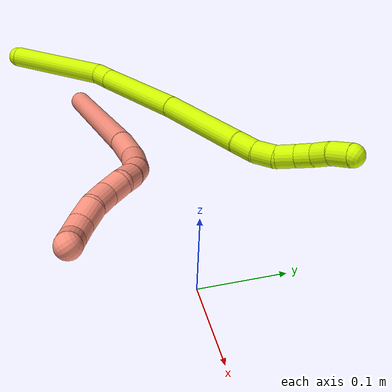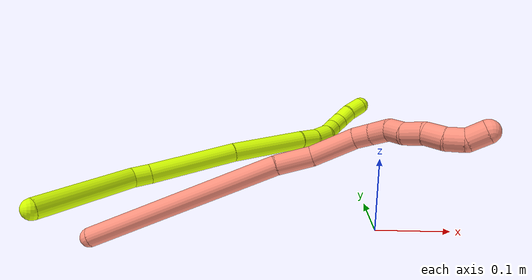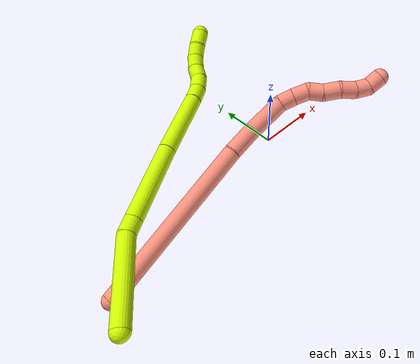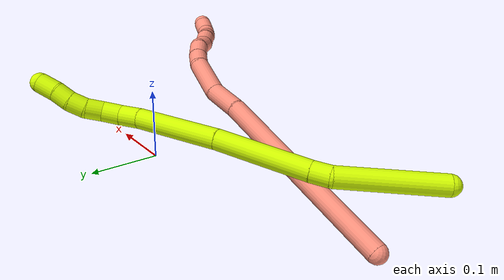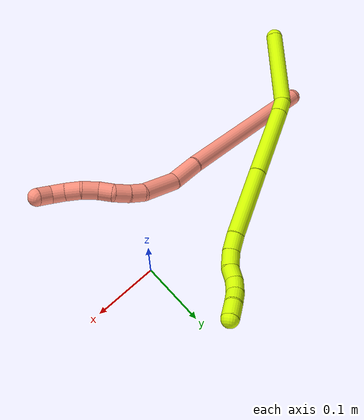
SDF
<sdf version="1.7">
 <world name="default">
  <model name="15">
   <static>0</static>
   <link name="15">
    <collision name="collision-cylinder-e_1_1_4">
     <pose>-0.004307 0.017404 -0.058336 -2.85166 -0.070638 0.474926</pose>
     <geometry><cylinder><radius>0.0125</radius><length>0.122059</length></cylinder></geometry>
     <surface>
      <friction><ode><mu>1.16</mu><mu2>1.16</mu2><slip1>0</slip1><slip2>0</slip2></ode></friction>
      <contact><ode><kp>1e+06</kp><kd>1</kd><max_vel>0</max_vel><min_depth>0.001</min_depth></ode></contact>
     </surface>
    </collision>
    <visual name="visual-cylinder-e_1_1_4">
     <pose>-0.004307 0.017404 -0.058336 -2.85166 -0.070638 0.474926</pose>
     <geometry><cylinder><radius>0.0125</radius><length>0.122059</length></cylinder></geometry>
     <material><ambient>0.835294 1 0 1</ambient></material>
    </visual>
    <collision name="collision-cylinder-e_2_4_5">
     <pose>-0.00581 0.036284 -0.127493 -3.00602 0.251365 -2.15549</pose>
     <geometry><cylinder><radius>0.0125</radius><length>0.02255</length></cylinder></geometry>
     <surface>
      <friction><ode><mu>1.16</mu><mu2>1.16</mu2><slip1>0</slip1><slip2>0</slip2></ode></friction>
      <contact><ode><kp>1e+06</kp><kd>1</kd><max_vel>0</max_vel><min_depth>0.001</min_depth></ode></contact>
     </surface>
    </collision>
    <visual name="visual-cylinder-e_2_4_5">
     <pose>-0.00581 0.036284 -0.127493 -3.00602 0.251365 -2.15549</pose>
     <geometry><cylinder><radius>0.0125</radius><length>0.02255</length></cylinder></geometry>
     <material><ambient>0.835294 1 0 1</ambient></material>
    </visual>
    <collision name="collision-cylinder-e_3_5_6">
     <pose>0.014287 0.046772 -0.191796 -2.97466 0.308662 -2.15476</pose>
     <geometry><cylinder><radius>0.0125</radius><length>0.113853</length></cylinder></geometry>
     <surface>
      <friction><ode><mu>1.16</mu><mu2>1.16</mu2><slip1>0</slip1><slip2>0</slip2></ode></friction>
      <contact><ode><kp>1e+06</kp><kd>1</kd><max_vel>0</max_vel><min_depth>0.001</min_depth></ode></contact>
     </surface>
    </collision>
    <visual name="visual-cylinder-e_3_5_6">
     <pose>0.014287 0.046772 -0.191796 -2.97466 0.308662 -2.15476</pose>
     <geometry><cylinder><radius>0.0125</radius><length>0.113853</length></cylinder></geometry>
     <material><ambient>0.835294 1 0 1</ambient></material>
    </visual>
    <collision name="collision-cylinder-e_4_6_7">
     <pose>0.045848 0.061143 -0.295242 -3.03474 0.276651 -2.40809</pose>
     <geometry><cylinder><radius>0.0125</radius><length>0.104475</length></cylinder></geometry>
     <surface>
      <friction><ode><mu>1.16</mu><mu2>1.16</mu2><slip1>0</slip1><slip2>0</slip2></ode></friction>
      <contact><ode><kp>1e+06</kp><kd>1</kd><max_vel>0</max_vel><min_depth>0.001</min_depth></ode></contact>
     </surface>
    </collision>
    <visual name="visual-cylinder-e_4_6_7">
     <pose>0.045848 0.061143 -0.295242 -3.03474 0.276651 -2.40809</pose>
     <geometry><cylinder><radius>0.0125</radius><length>0.104475</length></cylinder></geometry>
     <material><ambient>0.835294 1 0 1</ambient></material>
    </visual>
    <collision name="collision-cylinder-e_5_7_8">
     <pose>0.062481 0.067738 -0.357793 -3.0437 0.184853 -2.16926</pose>
     <geometry><cylinder><radius>0.0125</radius><length>0.025732</length></cylinder></geometry>
     <surface>
      <friction><ode><mu>1.16</mu><mu2>1.16</mu2><slip1>0</slip1><slip2>0</slip2></ode></friction>
      <contact><ode><kp>1e+06</kp><kd>1</kd><max_vel>0</max_vel><min_depth>0.001</min_depth></ode></contact>
     </surface>
    </collision>
    <visual name="visual-cylinder-e_5_7_8">
     <pose>0.062481 0.067738 -0.357793 -3.0437 0.184853 -2.16926</pose>
     <geometry><cylinder><radius>0.0125</radius><length>0.025732</length></cylinder></geometry>
     <material><ambient>0.835294 1 0 1</ambient></material>
    </visual>
    <collision name="collision-cylinder-e_6_8_9">
     <pose>0.065963 0.072499 -0.381978 -2.84657 0.091933 -0.600431</pose>
     <geometry><cylinder><radius>0.0125</radius><length>0.024348</length></cylinder></geometry>
     <surface>
      <friction><ode><mu>1.16</mu><mu2>1.16</mu2><slip1>0</slip1><slip2>0</slip2></ode></friction>
      <contact><ode><kp>1e+06</kp><kd>1</kd><max_vel>0</max_vel><min_depth>0.001</min_depth></ode></contact>
     </surface>
    </collision>
    <visual name="visual-cylinder-e_6_8_9">
     <pose>0.065963 0.072499 -0.381978 -2.84657 0.091933 -0.600431</pose>
     <geometry><cylinder><radius>0.0125</radius><length>0.024348</length></cylinder></geometry>
     <material><ambient>0.835294 1 0 1</ambient></material>
    </visual>
    <collision name="collision-cylinder-e_7_9_10">
     <pose>0.065721 0.081666 -0.40256 -2.58078 -0.12747 0.436164</pose>
     <geometry><cylinder><radius>0.0125</radius><length>0.02139</length></cylinder></geometry>
     <surface>
      <friction><ode><mu>1.16</mu><mu2>1.16</mu2><slip1>0</slip1><slip2>0</slip2></ode></friction>
      <contact><ode><kp>1e+06</kp><kd>1</kd><max_vel>0</max_vel><min_depth>0.001</min_depth></ode></contact>
     </surface>
    </collision>
    <visual name="visual-cylinder-e_7_9_10">
     <pose>0.065721 0.081666 -0.40256 -2.58078 -0.12747 0.436164</pose>
     <geometry><cylinder><radius>0.0125</radius><length>0.02139</length></cylinder></geometry>
     <material><ambient>0.835294 1 0 1</ambient></material>
    </visual>
    <collision name="collision-cylinder-e_8_10_11">
     <pose>0.06587 0.092932 -0.420074 -2.55879 0.146514 -0.479925</pose>
     <geometry><cylinder><radius>0.0125</radius><length>0.020658</length></cylinder></geometry>
     <surface>
      <friction><ode><mu>1.16</mu><mu2>1.16</mu2><slip1>0</slip1><slip2>0</slip2></ode></friction>
      <contact><ode><kp>1e+06</kp><kd>1</kd><max_vel>0</max_vel><min_depth>0.001</min_depth></ode></contact>
     </surface>
    </collision>
    <visual name="visual-cylinder-e_8_10_11">
     <pose>0.06587 0.092932 -0.420074 -2.55879 0.146514 -0.479925</pose>
     <geometry><cylinder><radius>0.0125</radius><length>0.020658</length></cylinder></geometry>
     <material><ambient>0.835294 1 0 1</ambient></material>
    </visual>
    <collision name="collision-cylinder-e_9_11_12">
     <pose>0.071073 0.104126 -0.436335 -2.51708 0.370033 -1.0508</pose>
     <geometry><cylinder><radius>0.0125</radius><length>0.020438</length></cylinder></geometry>
     <surface>
      <friction><ode><mu>1.16</mu><mu2>1.16</mu2><slip1>0</slip1><slip2>0</slip2></ode></friction>
      <contact><ode><kp>1e+06</kp><kd>1</kd><max_vel>0</max_vel><min_depth>0.001</min_depth></ode></contact>
     </surface>
    </collision>
    <visual name="visual-cylinder-e_9_11_12">
     <pose>0.071073 0.104126 -0.436335 -2.51708 0.370033 -1.0508</pose>
     <geometry><cylinder><radius>0.0125</radius><length>0.020438</length></cylinder></geometry>
     <material><ambient>0.835294 1 0 1</ambient></material>
    </visual>
    <collision name="collision-cylinder-e_10_12_2">
     <pose>0.078775 0.114666 -0.454519 -2.69798 0.333139 -1.28125</pose>
     <geometry><cylinder><radius>0.0125</radius><length>0.024498</length></cylinder></geometry>
     <surface>
      <friction><ode><mu>1.16</mu><mu2>1.16</mu2><slip1>0</slip1><slip2>0</slip2></ode></friction>
      <contact><ode><kp>1e+06</kp><kd>1</kd><max_vel>0</max_vel><min_depth>0.001</min_depth></ode></contact>
     </surface>
    </collision>
    <visual name="visual-cylinder-e_10_12_2">
     <pose>0.078775 0.114666 -0.454519 -2.69798 0.333139 -1.28125</pose>
     <geometry><cylinder><radius>0.0125</radius><length>0.024498</length></cylinder></geometry>
     <material><ambient>0.835294 1 0 1</ambient></material>
    </visual>
    <collision name="collision-sphere-2">
     <pose>0.08278 0.119634 -0.464975 0 -0 0</pose>
     <geometry><sphere><radius>0.0125</radius></sphere></geometry>
     <surface>
      <friction><ode><mu>1.16</mu><mu2>1.16</mu2><slip1>0</slip1><slip2>0</slip2></ode></friction>
      <contact><ode><kp>1e+06</kp><kd>1</kd><max_vel>0</max_vel><min_depth>0.001</min_depth></ode></contact>
     </surface>
    </collision>
    <visual name="visual-sphere-2">
     <pose>0.08278 0.119634 -0.464975 0 -0 0</pose>
     <geometry><sphere><radius>0.0125</radius></sphere></geometry>
     <material><ambient>0.835294 1 0 1</ambient></material>
    </visual>
    <collision name="collision-sphere-12">
     <pose>0.074769 0.109697 -0.444064 0 -0 0</pose>
     <geometry><sphere><radius>0.0125</radius></sphere></geometry>
     <surface>
      <friction><ode><mu>1.16</mu><mu2>1.16</mu2><slip1>0</slip1><slip2>0</slip2></ode></friction>
      <contact><ode><kp>1e+06</kp><kd>1</kd><max_vel>0</max_vel><min_depth>0.001</min_depth></ode></contact>
     </surface>
    </collision>
    <visual name="visual-sphere-12">
     <pose>0.074769 0.109697 -0.444064 0 -0 0</pose>
     <geometry><sphere><radius>0.0125</radius></sphere></geometry>
     <material><ambient>0.835294 1 0 1</ambient></material>
    </visual>
    <collision name="collision-sphere-11">
     <pose>0.067378 0.098556 -0.428606 0 -0 0</pose>
     <geometry><sphere><radius>0.0125</radius></sphere></geometry>
     <surface>
      <friction><ode><mu>1.16</mu><mu2>1.16</mu2><slip1>0</slip1><slip2>0</slip2></ode></friction>
      <contact><ode><kp>1e+06</kp><kd>1</kd><max_vel>0</max_vel><min_depth>0.001</min_depth></ode></contact>
     </surface>
    </collision>
    <visual name="visual-sphere-11">
     <pose>0.067378 0.098556 -0.428606 0 -0 0</pose>
     <geometry><sphere><radius>0.0125</radius></sphere></geometry>
     <material><ambient>0.835294 1 0 1</ambient></material>
    </visual>
    <collision name="collision-sphere-10">
     <pose>0.064362 0.087308 -0.411543 0 -0 0</pose>
     <geometry><sphere><radius>0.0125</radius></sphere></geometry>
     <surface>
      <friction><ode><mu>1.16</mu><mu2>1.16</mu2><slip1>0</slip1><slip2>0</slip2></ode></friction>
      <contact><ode><kp>1e+06</kp><kd>1</kd><max_vel>0</max_vel><min_depth>0.001</min_depth></ode></contact>
     </surface>
    </collision>
    <visual name="visual-sphere-10">
     <pose>0.064362 0.087308 -0.411543 0 -0 0</pose>
     <geometry><sphere><radius>0.0125</radius></sphere></geometry>
     <material><ambient>0.835294 1 0 1</ambient></material>
    </visual>
    <collision name="collision-sphere-9">
     <pose>0.067081 0.076023 -0.393576 0 -0 0</pose>
     <geometry><sphere><radius>0.0125</radius></sphere></geometry>
     <surface>
      <friction><ode><mu>1.16</mu><mu2>1.16</mu2><slip1>0</slip1><slip2>0</slip2></ode></friction>
      <contact><ode><kp>1e+06</kp><kd>1</kd><max_vel>0</max_vel><min_depth>0.001</min_depth></ode></contact>
     </surface>
    </collision>
    <visual name="visual-sphere-9">
     <pose>0.067081 0.076023 -0.393576 0 -0 0</pose>
     <geometry><sphere><radius>0.0125</radius></sphere></geometry>
     <material><ambient>0.835294 1 0 1</ambient></material>
    </visual>
    <collision name="collision-sphere-4">
     <pose>-0.008615 0.034808 -0.116673 0 -0 0</pose>
     <geometry><sphere><radius>0.0125</radius></sphere></geometry>
     <surface>
      <friction><ode><mu>1.16</mu><mu2>1.16</mu2><slip1>0</slip1><slip2>0</slip2></ode></friction>
      <contact><ode><kp>1e+06</kp><kd>1</kd><max_vel>0</max_vel><min_depth>0.001</min_depth></ode></contact>
     </surface>
    </collision>
    <visual name="visual-sphere-4">
     <pose>-0.008615 0.034808 -0.116673 0 -0 0</pose>
     <geometry><sphere><radius>0.0125</radius></sphere></geometry>
     <material><ambient>0.835294 1 0 1</ambient></material>
    </visual>
    <collision name="collision-sphere-1">
     <geometry><sphere><radius>0.0125</radius></sphere></geometry>
     <surface>
      <friction><ode><mu>1.16</mu><mu2>1.16</mu2><slip1>0</slip1><slip2>0</slip2></ode></friction>
      <contact><ode><kp>1e+06</kp><kd>1</kd><max_vel>0</max_vel><min_depth>0.001</min_depth></ode></contact>
     </surface>
    </collision>
    <visual name="visual-sphere-1">
     <geometry><sphere><radius>0.0125</radius></sphere></geometry>
     <material><ambient>0.835294 1 0 1</ambient></material>
    </visual>
    <collision name="collision-sphere-8">
     <pose>0.064846 0.068974 -0.370379 0 -0 0</pose>
     <geometry><sphere><radius>0.0125</radius></sphere></geometry>
     <surface>
      <friction><ode><mu>1.16</mu><mu2>1.16</mu2><slip1>0</slip1><slip2>0</slip2></ode></friction>
      <contact><ode><kp>1e+06</kp><kd>1</kd><max_vel>0</max_vel><min_depth>0.001</min_depth></ode></contact>
     </surface>
    </collision>
    <visual name="visual-sphere-8">
     <pose>0.064846 0.068974 -0.370379 0 -0 0</pose>
     <geometry><sphere><radius>0.0125</radius></sphere></geometry>
     <material><ambient>0.835294 1 0 1</ambient></material>
    </visual>
    <collision name="collision-sphere-5">
     <pose>-0.003006 0.03776 -0.138313 0 -0 0</pose>
     <geometry><sphere><radius>0.0125</radius></sphere></geometry>
     <surface>
      <friction><ode><mu>1.16</mu><mu2>1.16</mu2><slip1>0</slip1><slip2>0</slip2></ode></friction>
      <contact><ode><kp>1e+06</kp><kd>1</kd><max_vel>0</max_vel><min_depth>0.001</min_depth></ode></contact>
     </surface>
    </collision>
    <visual name="visual-sphere-5">
     <pose>-0.003006 0.03776 -0.138313 0 -0 0</pose>
     <geometry><sphere><radius>0.0125</radius></sphere></geometry>
     <material><ambient>0.835294 1 0 1</ambient></material>
    </visual>
    <collision name="collision-sphere-6">
     <pose>0.031581 0.055784 -0.245278 0 -0 0</pose>
     <geometry><sphere><radius>0.0125</radius></sphere></geometry>
     <surface>
      <friction><ode><mu>1.16</mu><mu2>1.16</mu2><slip1>0</slip1><slip2>0</slip2></ode></friction>
      <contact><ode><kp>1e+06</kp><kd>1</kd><max_vel>0</max_vel><min_depth>0.001</min_depth></ode></contact>
     </surface>
    </collision>
    <visual name="visual-sphere-6">
     <pose>0.031581 0.055784 -0.245278 0 -0 0</pose>
     <geometry><sphere><radius>0.0125</radius></sphere></geometry>
     <material><ambient>0.835294 1 0 1</ambient></material>
    </visual>
    <collision name="collision-sphere-7">
     <pose>0.060116 0.066502 -0.345207 0 -0 0</pose>
     <geometry><sphere><radius>0.0125</radius></sphere></geometry>
     <surface>
      <friction><ode><mu>1.16</mu><mu2>1.16</mu2><slip1>0</slip1><slip2>0</slip2></ode></friction>
      <contact><ode><kp>1e+06</kp><kd>1</kd><max_vel>0</max_vel><min_depth>0.001</min_depth></ode></contact>
     </surface>
    </collision>
    <visual name="visual-sphere-7">
     <pose>0.060116 0.066502 -0.345207 0 -0 0</pose>
     <geometry><sphere><radius>0.0125</radius></sphere></geometry>
     <material><ambient>0.835294 1 0 1</ambient></material>
    </visual>
    <inertial>
     <pose>0.030245 0.053535 -0.237051 0 -0 0</pose>
     <mass>0.5</mass>
     <inertia>
      <ixx>-9.1e-05</ixx>
      <ixy>0</ixy>
      <ixz>0</ixz>
      <iyy>-7.6e-05</iyy>
      <iyz>0</iyz>
      <izz>-0.000173</izz>
     </inertia>
    </inertial>
   </link>
   <pose>-0.388523 -0.139216 0.079455 1.37451 -0.533678 -0.793947</pose>
  </model>
  <model name="16">
   <static>0</static>
   <link name="16">
    <collision name="collision-cylinder-e_1_1_4">
     <pose>0.082809 -0.091097 0.02049 1.34955 0.725511 0.589629</pose>
     <geometry><cylinder><radius>0.0125</radius><length>0.249607</length></cylinder></geometry>
     <surface>
      <friction><ode><mu>1.16</mu><mu2>1.16</mu2><slip1>0</slip1><slip2>0</slip2></ode></friction>
      <contact><ode><kp>1e+06</kp><kd>1</kd><max_vel>0</max_vel><min_depth>0.001</min_depth></ode></contact>
     </surface>
    </collision>
    <visual name="visual-cylinder-e_1_1_4">
     <pose>0.082809 -0.091097 0.02049 1.34955 0.725511 0.589629</pose>
     <geometry><cylinder><radius>0.0125</radius><length>0.249607</length></cylinder></geometry>
     <material><ambient>1 0.576471 0.494118 1</ambient></material>
    </visual>
    <collision name="collision-cylinder-e_2_4_5">
     <pose>0.182344 -0.196647 0.043398 1.40502 0.851333 0.732983</pose>
     <geometry><cylinder><radius>0.0125</radius><length>0.044474</length></cylinder></geometry>
     <surface>
      <friction><ode><mu>1.16</mu><mu2>1.16</mu2><slip1>0</slip1><slip2>0</slip2></ode></friction>
      <contact><ode><kp>1e+06</kp><kd>1</kd><max_vel>0</max_vel><min_depth>0.001</min_depth></ode></contact>
     </surface>
    </collision>
    <visual name="visual-cylinder-e_2_4_5">
     <pose>0.182344 -0.196647 0.043398 1.40502 0.851333 0.732983</pose>
     <geometry><cylinder><radius>0.0125</radius><length>0.044474</length></cylinder></geometry>
     <material><ambient>1 0.576471 0.494118 1</ambient></material>
    </visual>
    <collision name="collision-cylinder-e_3_5_6">
     <pose>0.214138 -0.234187 0.046949 1.52179 0.577698 0.551472</pose>
     <geometry><cylinder><radius>0.0125</radius><length>0.055185</length></cylinder></geometry>
     <surface>
      <friction><ode><mu>1.16</mu><mu2>1.16</mu2><slip1>0</slip1><slip2>0</slip2></ode></friction>
      <contact><ode><kp>1e+06</kp><kd>1</kd><max_vel>0</max_vel><min_depth>0.001</min_depth></ode></contact>
     </surface>
    </collision>
    <visual name="visual-cylinder-e_3_5_6">
     <pose>0.214138 -0.234187 0.046949 1.52179 0.577698 0.551472</pose>
     <geometry><cylinder><radius>0.0125</radius><length>0.055185</length></cylinder></geometry>
     <material><ambient>1 0.576471 0.494118 1</ambient></material>
    </visual>
    <collision name="collision-cylinder-e_4_6_7">
     <pose>0.233887 -0.266386 0.045216 1.87542 0.455654 0.612032</pose>
     <geometry><cylinder><radius>0.0125</radius><length>0.021275</length></cylinder></geometry>
     <surface>
      <friction><ode><mu>1.16</mu><mu2>1.16</mu2><slip1>0</slip1><slip2>0</slip2></ode></friction>
      <contact><ode><kp>1e+06</kp><kd>1</kd><max_vel>0</max_vel><min_depth>0.001</min_depth></ode></contact>
     </surface>
    </collision>
    <visual name="visual-cylinder-e_4_6_7">
     <pose>0.233887 -0.266386 0.045216 1.87542 0.455654 0.612032</pose>
     <geometry><cylinder><radius>0.0125</radius><length>0.021275</length></cylinder></geometry>
     <material><ambient>1 0.576471 0.494118 1</ambient></material>
    </visual>
    <collision name="collision-cylinder-e_5_7_8">
     <pose>0.242239 -0.285219 0.038306 1.96513 0.335432 0.497169</pose>
     <geometry><cylinder><radius>0.0125</radius><length>0.022301</length></cylinder></geometry>
     <surface>
      <friction><ode><mu>1.16</mu><mu2>1.16</mu2><slip1>0</slip1><slip2>0</slip2></ode></friction>
      <contact><ode><kp>1e+06</kp><kd>1</kd><max_vel>0</max_vel><min_depth>0.001</min_depth></ode></contact>
     </surface>
    </collision>
    <visual name="visual-cylinder-e_5_7_8">
     <pose>0.242239 -0.285219 0.038306 1.96513 0.335432 0.497169</pose>
     <geometry><cylinder><radius>0.0125</radius><length>0.022301</length></cylinder></geometry>
     <material><ambient>1 0.576471 0.494118 1</ambient></material>
    </visual>
    <collision name="collision-cylinder-e_6_8_9">
     <pose>0.248881 -0.301015 0.026667 2.46683 0.296558 0.805127</pose>
     <geometry><cylinder><radius>0.0125</radius><length>0.020336</length></cylinder></geometry>
     <surface>
      <friction><ode><mu>1.16</mu><mu2>1.16</mu2><slip1>0</slip1><slip2>0</slip2></ode></friction>
      <contact><ode><kp>1e+06</kp><kd>1</kd><max_vel>0</max_vel><min_depth>0.001</min_depth></ode></contact>
     </surface>
    </collision>
    <visual name="visual-cylinder-e_6_8_9">
     <pose>0.248881 -0.301015 0.026667 2.46683 0.296558 0.805127</pose>
     <geometry><cylinder><radius>0.0125</radius><length>0.020336</length></cylinder></geometry>
     <material><ambient>1 0.576471 0.494118 1</ambient></material>
    </visual>
    <collision name="collision-cylinder-e_7_9_10">
     <pose>0.256375 -0.315963 0.012919 2.17733 0.396619 0.733256</pose>
     <geometry><cylinder><radius>0.0125</radius><length>0.023415</length></cylinder></geometry>
     <surface>
      <friction><ode><mu>1.16</mu><mu2>1.16</mu2><slip1>0</slip1><slip2>0</slip2></ode></friction>
      <contact><ode><kp>1e+06</kp><kd>1</kd><max_vel>0</max_vel><min_depth>0.001</min_depth></ode></contact>
     </surface>
    </collision>
    <visual name="visual-cylinder-e_7_9_10">
     <pose>0.256375 -0.315963 0.012919 2.17733 0.396619 0.733256</pose>
     <geometry><cylinder><radius>0.0125</radius><length>0.023415</length></cylinder></geometry>
     <material><ambient>1 0.576471 0.494118 1</ambient></material>
    </visual>
    <collision name="collision-cylinder-e_8_10_11">
     <pose>0.266766 -0.330988 -0.000456 2.43573 0.554003 1.31467</pose>
     <geometry><cylinder><radius>0.0125</radius><length>0.022309</length></cylinder></geometry>
     <surface>
      <friction><ode><mu>1.16</mu><mu2>1.16</mu2><slip1>0</slip1><slip2>0</slip2></ode></friction>
      <contact><ode><kp>1e+06</kp><kd>1</kd><max_vel>0</max_vel><min_depth>0.001</min_depth></ode></contact>
     </surface>
    </collision>
    <visual name="visual-cylinder-e_8_10_11">
     <pose>0.266766 -0.330988 -0.000456 2.43573 0.554003 1.31467</pose>
     <geometry><cylinder><radius>0.0125</radius><length>0.022309</length></cylinder></geometry>
     <material><ambient>1 0.576471 0.494118 1</ambient></material>
    </visual>
    <collision name="collision-cylinder-e_9_11_12">
     <pose>0.278396 -0.344142 -0.012399 2.16433 0.598728 1.05199</pose>
     <geometry><cylinder><radius>0.0125</radius><length>0.020446</length></cylinder></geometry>
     <surface>
      <friction><ode><mu>1.16</mu><mu2>1.16</mu2><slip1>0</slip1><slip2>0</slip2></ode></friction>
      <contact><ode><kp>1e+06</kp><kd>1</kd><max_vel>0</max_vel><min_depth>0.001</min_depth></ode></contact>
     </surface>
    </collision>
    <visual name="visual-cylinder-e_9_11_12">
     <pose>0.278396 -0.344142 -0.012399 2.16433 0.598728 1.05199</pose>
     <geometry><cylinder><radius>0.0125</radius><length>0.020446</length></cylinder></geometry>
     <material><ambient>1 0.576471 0.494118 1</ambient></material>
    </visual>
    <collision name="collision-cylinder-e_10_12_2">
     <pose>0.288796 -0.360363 -0.017446 1.60592 0.465882 0.481911</pose>
     <geometry><cylinder><radius>0.0125</radius><length>0.020653</length></cylinder></geometry>
     <surface>
      <friction><ode><mu>1.16</mu><mu2>1.16</mu2><slip1>0</slip1><slip2>0</slip2></ode></friction>
      <contact><ode><kp>1e+06</kp><kd>1</kd><max_vel>0</max_vel><min_depth>0.001</min_depth></ode></contact>
     </surface>
    </collision>
    <visual name="visual-cylinder-e_10_12_2">
     <pose>0.288796 -0.360363 -0.017446 1.60592 0.465882 0.481911</pose>
     <geometry><cylinder><radius>0.0125</radius><length>0.020653</length></cylinder></geometry>
     <material><ambient>1 0.576471 0.494118 1</ambient></material>
    </visual>
    <collision name="collision-sphere-2">
     <pose>0.293435 -0.369583 -0.017769 0 -0 0</pose>
     <geometry><sphere><radius>0.0125</radius></sphere></geometry>
     <surface>
      <friction><ode><mu>1.16</mu><mu2>1.16</mu2><slip1>0</slip1><slip2>0</slip2></ode></friction>
      <contact><ode><kp>1e+06</kp><kd>1</kd><max_vel>0</max_vel><min_depth>0.001</min_depth></ode></contact>
     </surface>
    </collision>
    <visual name="visual-sphere-2">
     <pose>0.293435 -0.369583 -0.017769 0 -0 0</pose>
     <geometry><sphere><radius>0.0125</radius></sphere></geometry>
     <material><ambient>1 0.576471 0.494118 1</ambient></material>
    </visual>
    <collision name="collision-sphere-12">
     <pose>0.284157 -0.351143 -0.017122 0 -0 0</pose>
     <geometry><sphere><radius>0.0125</radius></sphere></geometry>
     <surface>
      <friction><ode><mu>1.16</mu><mu2>1.16</mu2><slip1>0</slip1><slip2>0</slip2></ode></friction>
      <contact><ode><kp>1e+06</kp><kd>1</kd><max_vel>0</max_vel><min_depth>0.001</min_depth></ode></contact>
     </surface>
    </collision>
    <visual name="visual-sphere-12">
     <pose>0.284157 -0.351143 -0.017122 0 -0 0</pose>
     <geometry><sphere><radius>0.0125</radius></sphere></geometry>
     <material><ambient>1 0.576471 0.494118 1</ambient></material>
    </visual>
    <collision name="collision-sphere-11">
     <pose>0.272634 -0.337142 -0.007676 0 -0 0</pose>
     <geometry><sphere><radius>0.0125</radius></sphere></geometry>
     <surface>
      <friction><ode><mu>1.16</mu><mu2>1.16</mu2><slip1>0</slip1><slip2>0</slip2></ode></friction>
      <contact><ode><kp>1e+06</kp><kd>1</kd><max_vel>0</max_vel><min_depth>0.001</min_depth></ode></contact>
     </surface>
    </collision>
    <visual name="visual-sphere-11">
     <pose>0.272634 -0.337142 -0.007676 0 -0 0</pose>
     <geometry><sphere><radius>0.0125</radius></sphere></geometry>
     <material><ambient>1 0.576471 0.494118 1</ambient></material>
    </visual>
    <collision name="collision-sphere-10">
     <pose>0.260897 -0.324835 0.006763 0 -0 0</pose>
     <geometry><sphere><radius>0.0125</radius></sphere></geometry>
     <surface>
      <friction><ode><mu>1.16</mu><mu2>1.16</mu2><slip1>0</slip1><slip2>0</slip2></ode></friction>
      <contact><ode><kp>1e+06</kp><kd>1</kd><max_vel>0</max_vel><min_depth>0.001</min_depth></ode></contact>
     </surface>
    </collision>
    <visual name="visual-sphere-10">
     <pose>0.260897 -0.324835 0.006763 0 -0 0</pose>
     <geometry><sphere><radius>0.0125</radius></sphere></geometry>
     <material><ambient>1 0.576471 0.494118 1</ambient></material>
    </visual>
    <collision name="collision-sphere-9">
     <pose>0.251852 -0.30709 0.019074 0 -0 0</pose>
     <geometry><sphere><radius>0.0125</radius></sphere></geometry>
     <surface>
      <friction><ode><mu>1.16</mu><mu2>1.16</mu2><slip1>0</slip1><slip2>0</slip2></ode></friction>
      <contact><ode><kp>1e+06</kp><kd>1</kd><max_vel>0</max_vel><min_depth>0.001</min_depth></ode></contact>
     </surface>
    </collision>
    <visual name="visual-sphere-9">
     <pose>0.251852 -0.30709 0.019074 0 -0 0</pose>
     <geometry><sphere><radius>0.0125</radius></sphere></geometry>
     <material><ambient>1 0.576471 0.494118 1</ambient></material>
    </visual>
    <collision name="collision-sphere-4">
     <pose>0.165619 -0.182194 0.04098 0 -0 0</pose>
     <geometry><sphere><radius>0.0125</radius></sphere></geometry>
     <surface>
      <friction><ode><mu>1.16</mu><mu2>1.16</mu2><slip1>0</slip1><slip2>0</slip2></ode></friction>
      <contact><ode><kp>1e+06</kp><kd>1</kd><max_vel>0</max_vel><min_depth>0.001</min_depth></ode></contact>
     </surface>
    </collision>
    <visual name="visual-sphere-4">
     <pose>0.165619 -0.182194 0.04098 0 -0 0</pose>
     <geometry><sphere><radius>0.0125</radius></sphere></geometry>
     <material><ambient>1 0.576471 0.494118 1</ambient></material>
    </visual>
    <collision name="collision-sphere-1">
     <geometry><sphere><radius>0.0125</radius></sphere></geometry>
     <surface>
      <friction><ode><mu>1.16</mu><mu2>1.16</mu2><slip1>0</slip1><slip2>0</slip2></ode></friction>
      <contact><ode><kp>1e+06</kp><kd>1</kd><max_vel>0</max_vel><min_depth>0.001</min_depth></ode></contact>
     </surface>
    </collision>
    <visual name="visual-sphere-1">
     <geometry><sphere><radius>0.0125</radius></sphere></geometry>
     <material><ambient>1 0.576471 0.494118 1</ambient></material>
    </visual>
    <collision name="collision-sphere-8">
     <pose>0.245909 -0.29494 0.03426 0 -0 0</pose>
     <geometry><sphere><radius>0.0125</radius></sphere></geometry>
     <surface>
      <friction><ode><mu>1.16</mu><mu2>1.16</mu2><slip1>0</slip1><slip2>0</slip2></ode></friction>
      <contact><ode><kp>1e+06</kp><kd>1</kd><max_vel>0</max_vel><min_depth>0.001</min_depth></ode></contact>
     </surface>
    </collision>
    <visual name="visual-sphere-8">
     <pose>0.245909 -0.29494 0.03426 0 -0 0</pose>
     <geometry><sphere><radius>0.0125</radius></sphere></geometry>
     <material><ambient>1 0.576471 0.494118 1</ambient></material>
    </visual>
    <collision name="collision-sphere-5">
     <pose>0.19907 -0.2111 0.045816 0 -0 0</pose>
     <geometry><sphere><radius>0.0125</radius></sphere></geometry>
     <surface>
      <friction><ode><mu>1.16</mu><mu2>1.16</mu2><slip1>0</slip1><slip2>0</slip2></ode></friction>
      <contact><ode><kp>1e+06</kp><kd>1</kd><max_vel>0</max_vel><min_depth>0.001</min_depth></ode></contact>
     </surface>
    </collision>
    <visual name="visual-sphere-5">
     <pose>0.19907 -0.2111 0.045816 0 -0 0</pose>
     <geometry><sphere><radius>0.0125</radius></sphere></geometry>
     <material><ambient>1 0.576471 0.494118 1</ambient></material>
    </visual>
    <collision name="collision-sphere-6">
     <pose>0.229207 -0.257274 0.048081 0 -0 0</pose>
     <geometry><sphere><radius>0.0125</radius></sphere></geometry>
     <surface>
      <friction><ode><mu>1.16</mu><mu2>1.16</mu2><slip1>0</slip1><slip2>0</slip2></ode></friction>
      <contact><ode><kp>1e+06</kp><kd>1</kd><max_vel>0</max_vel><min_depth>0.001</min_depth></ode></contact>
     </surface>
    </collision>
    <visual name="visual-sphere-6">
     <pose>0.229207 -0.257274 0.048081 0 -0 0</pose>
     <geometry><sphere><radius>0.0125</radius></sphere></geometry>
     <material><ambient>1 0.576471 0.494118 1</ambient></material>
    </visual>
    <collision name="collision-sphere-7">
     <pose>0.238568 -0.275499 0.042351 0 -0 0</pose>
     <geometry><sphere><radius>0.0125</radius></sphere></geometry>
     <surface>
      <friction><ode><mu>1.16</mu><mu2>1.16</mu2><slip1>0</slip1><slip2>0</slip2></ode></friction>
      <contact><ode><kp>1e+06</kp><kd>1</kd><max_vel>0</max_vel><min_depth>0.001</min_depth></ode></contact>
     </surface>
    </collision>
    <visual name="visual-sphere-7">
     <pose>0.238568 -0.275499 0.042351 0 -0 0</pose>
     <geometry><sphere><radius>0.0125</radius></sphere></geometry>
     <material><ambient>1 0.576471 0.494118 1</ambient></material>
    </visual>
    <inertial>
     <pose>0.159293 -0.183636 0.023345 0 -0 0</pose>
     <mass>0.5</mass>
     <inertia>
      <ixx>0.001419</ixx>
      <ixy>0</ixy>
      <ixz>0</ixz>
      <iyy>0.001251</iyy>
      <iyz>0</iyz>
      <izz>9.3e-05</izz>
     </inertia>
    </inertial>
   </link>
   <pose>-0.364087 -0.064353 0.012467 -0.99051 0.418639 0.349935</pose>
  </model>
 </world>
</sdf>
